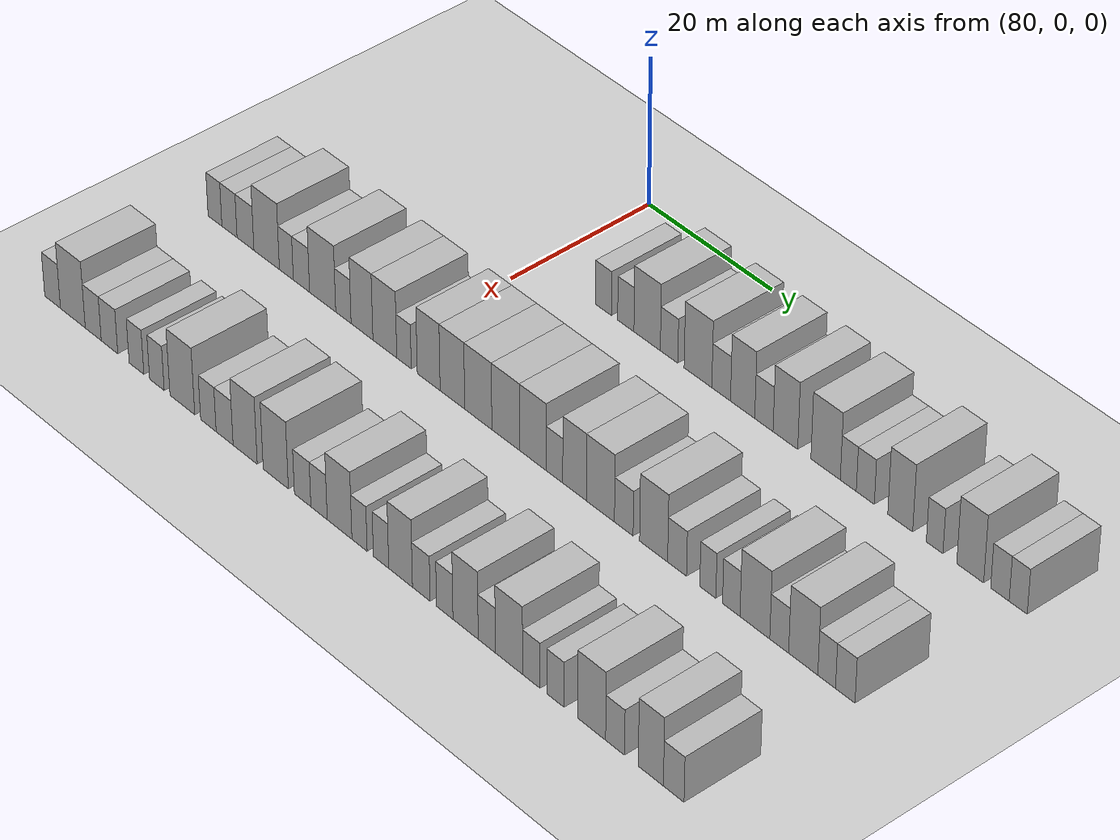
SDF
<sdf version="1.6">
 <world name="default">
  <include>
   <name>ground_plane_2</name>
   <uri>model://HANNAS_ground_plane</uri>
   <pose>100 0 0  0 0 0</pose>
  </include>
  <model name="building_646">
   <static>1</static>
   <pose>91.0000 10.6220 0 0.000000 0.000000 0.000000</pose>
   <link name="link">
    <pose>0 0 3.00 0 0 0</pose>
    <collision name="collision"><geometry><box><size>10.0000 2.6273 6.0000</size></box></geometry></collision>
    <visual name="visual">
     <cast_shadows>0</cast_shadows>
     <geometry><box><size>10.0000 2.6273 6.0000</size></box></geometry>
     <material>
      <script>
       <uri>model://HANNAS_wall/materials/scripts</uri>
       <uri>model://HANNAS_wall/materials/textures</uri>
       <name>vrc/HANNAS_wall</name>
      </script>
     </material>
    </visual>
   </link>
  </model>
  <model name="building_647">
   <static>1</static>
   <pose>91.0000 14.2509 0 0.000000 0.000000 0.000000</pose>
   <link name="link">
    <pose>0 0 3.00 0 0 0</pose>
    <collision name="collision"><geometry><box><size>10.0000 2.6305 6.0000</size></box></geometry></collision>
    <visual name="visual">
     <cast_shadows>0</cast_shadows>
     <geometry><box><size>10.0000 2.6305 6.0000</size></box></geometry>
     <material>
      <script>
       <uri>model://HANNAS_wall/materials/scripts</uri>
       <uri>model://HANNAS_wall/materials/textures</uri>
       <name>vrc/HANNAS_wall</name>
      </script>
     </material>
    </visual>
   </link>
  </model>
  <model name="building_648">
   <static>1</static>
   <pose>91.0000 17.6881 0 0.000000 0.000000 0.000000</pose>
   <link name="link">
    <pose>0 0 4.50 0 0 0</pose>
    <collision name="collision"><geometry><box><size>10.0000 4.2439 9.0000</size></box></geometry></collision>
    <visual name="visual">
     <cast_shadows>0</cast_shadows>
     <geometry><box><size>10.0000 4.2439 9.0000</size></box></geometry>
     <material>
      <script>
       <uri>model://HANNAS_wall/materials/scripts</uri>
       <uri>model://HANNAS_wall/materials/textures</uri>
       <name>vrc/HANNAS_wall</name>
      </script>
     </material>
    </visual>
   </link>
  </model>
  <model name="building_649">
   <static>1</static>
   <pose>91.0000 21.2003 0 0.000000 0.000000 0.000000</pose>
   <link name="link">
    <pose>0 0 3.00 0 0 0</pose>
    <collision name="collision"><geometry><box><size>10.0000 2.7805 6.0000</size></box></geometry></collision>
    <visual name="visual">
     <cast_shadows>0</cast_shadows>
     <geometry><box><size>10.0000 2.7805 6.0000</size></box></geometry>
     <material>
      <script>
       <uri>model://HANNAS_wall/materials/scripts</uri>
       <uri>model://HANNAS_wall/materials/textures</uri>
       <name>vrc/HANNAS_wall</name>
      </script>
     </material>
    </visual>
   </link>
  </model>
  <model name="building_650">
   <static>1</static>
   <pose>91.0000 25.7747 0 0.000000 0.000000 0.000000</pose>
   <link name="link">
    <pose>0 0 4.50 0 0 0</pose>
    <collision name="collision"><geometry><box><size>10.0000 4.3682 9.0000</size></box></geometry></collision>
    <visual name="visual">
     <cast_shadows>0</cast_shadows>
     <geometry><box><size>10.0000 4.3682 9.0000</size></box></geometry>
     <material>
      <script>
       <uri>model://HANNAS_wall/materials/scripts</uri>
       <uri>model://HANNAS_wall/materials/textures</uri>
       <name>vrc/HANNAS_wall</name>
      </script>
     </material>
    </visual>
   </link>
  </model>
  <model name="building_651">
   <static>1</static>
   <pose>91.0000 29.4192 0 0.000000 0.000000 0.000000</pose>
   <link name="link">
    <pose>0 0 3.00 0 0 0</pose>
    <collision name="collision"><geometry><box><size>10.0000 2.9207 6.0000</size></box></geometry></collision>
    <visual name="visual">
     <cast_shadows>0</cast_shadows>
     <geometry><box><size>10.0000 2.9207 6.0000</size></box></geometry>
     <material>
      <script>
       <uri>model://HANNAS_wall/materials/scripts</uri>
       <uri>model://HANNAS_wall/materials/textures</uri>
       <name>vrc/HANNAS_wall</name>
      </script>
     </material>
    </visual>
   </link>
  </model>
  <model name="building_652">
   <static>1</static>
   <pose>91.0000 32.7664 0 0.000000 0.000000 0.000000</pose>
   <link name="link">
    <pose>0 0 4.50 0 0 0</pose>
    <collision name="collision"><geometry><box><size>10.0000 3.7739 9.0000</size></box></geometry></collision>
    <visual name="visual">
     <cast_shadows>0</cast_shadows>
     <geometry><box><size>10.0000 3.7739 9.0000</size></box></geometry>
     <material>
      <script>
       <uri>model://HANNAS_wall/materials/scripts</uri>
       <uri>model://HANNAS_wall/materials/textures</uri>
       <name>vrc/HANNAS_wall</name>
      </script>
     </material>
    </visual>
   </link>
  </model>
  <model name="building_653">
   <static>1</static>
   <pose>91.0000 36.0673 0 0.000000 0.000000 0.000000</pose>
   <link name="link">
    <pose>0 0 3.00 0 0 0</pose>
    <collision name="collision"><geometry><box><size>10.0000 2.8278 6.0000</size></box></geometry></collision>
    <visual name="visual">
     <cast_shadows>0</cast_shadows>
     <geometry><box><size>10.0000 2.8278 6.0000</size></box></geometry>
     <material>
      <script>
       <uri>model://HANNAS_wall/materials/scripts</uri>
       <uri>model://HANNAS_wall/materials/textures</uri>
       <name>vrc/HANNAS_wall</name>
      </script>
     </material>
    </visual>
   </link>
  </model>
  <model name="building_654">
   <static>1</static>
   <pose>91.0000 39.3724 0 0.000000 0.000000 0.000000</pose>
   <link name="link">
    <pose>0 0 4.50 0 0 0</pose>
    <collision name="collision"><geometry><box><size>10.0000 3.7824 9.0000</size></box></geometry></collision>
    <visual name="visual">
     <cast_shadows>0</cast_shadows>
     <geometry><box><size>10.0000 3.7824 9.0000</size></box></geometry>
     <material>
      <script>
       <uri>model://HANNAS_wall/materials/scripts</uri>
       <uri>model://HANNAS_wall/materials/textures</uri>
       <name>vrc/HANNAS_wall</name>
      </script>
     </material>
    </visual>
   </link>
  </model>
  <model name="building_655">
   <static>1</static>
   <pose>91.0000 45.4849 0 0.000000 0.000000 0.000000</pose>
   <link name="link">
    <pose>0 0 4.50 0 0 0</pose>
    <collision name="collision"><geometry><box><size>10.0000 4.4428 9.0000</size></box></geometry></collision>
    <visual name="visual">
     <cast_shadows>0</cast_shadows>
     <geometry><box><size>10.0000 4.4428 9.0000</size></box></geometry>
     <material>
      <script>
       <uri>model://HANNAS_wall/materials/scripts</uri>
       <uri>model://HANNAS_wall/materials/textures</uri>
       <name>vrc/HANNAS_wall</name>
      </script>
     </material>
    </visual>
   </link>
  </model>
  <model name="building_656">
   <static>1</static>
   <pose>91.0000 48.9068 0 0.000000 0.000000 0.000000</pose>
   <link name="link">
    <pose>0 0 3.00 0 0 0</pose>
    <collision name="collision"><geometry><box><size>10.0000 2.4010 6.0000</size></box></geometry></collision>
    <visual name="visual">
     <cast_shadows>0</cast_shadows>
     <geometry><box><size>10.0000 2.4010 6.0000</size></box></geometry>
     <material>
      <script>
       <uri>model://HANNAS_wall/materials/scripts</uri>
       <uri>model://HANNAS_wall/materials/textures</uri>
       <name>vrc/HANNAS_wall</name>
      </script>
     </material>
    </visual>
   </link>
  </model>
  <model name="building_657">
   <static>1</static>
   <pose>91.0000 51.4537 0 0.000000 0.000000 0.000000</pose>
   <link name="link">
    <pose>0 0 3.00 0 0 0</pose>
    <collision name="collision"><geometry><box><size>10.0000 2.6928 6.0000</size></box></geometry></collision>
    <visual name="visual">
     <cast_shadows>0</cast_shadows>
     <geometry><box><size>10.0000 2.6928 6.0000</size></box></geometry>
     <material>
      <script>
       <uri>model://HANNAS_wall/materials/scripts</uri>
       <uri>model://HANNAS_wall/materials/textures</uri>
       <name>vrc/HANNAS_wall</name>
      </script>
     </material>
    </visual>
   </link>
  </model>
  <model name="building_658">
   <static>1</static>
   <pose>91.0000 56.6360 0 0.000000 0.000000 0.000000</pose>
   <link name="link">
    <pose>0 0 4.50 0 0 0</pose>
    <collision name="collision"><geometry><box><size>10.0000 3.6719 9.0000</size></box></geometry></collision>
    <visual name="visual">
     <cast_shadows>0</cast_shadows>
     <geometry><box><size>10.0000 3.6719 9.0000</size></box></geometry>
     <material>
      <script>
       <uri>model://HANNAS_wall/materials/scripts</uri>
       <uri>model://HANNAS_wall/materials/textures</uri>
       <name>vrc/HANNAS_wall</name>
      </script>
     </material>
    </visual>
   </link>
  </model>
  <model name="building_659">
   <static>1</static>
   <pose>91.0000 61.6836 0 0.000000 0.000000 0.000000</pose>
   <link name="link">
    <pose>0 0 3.00 0 0 0</pose>
    <collision name="collision"><geometry><box><size>10.0000 2.4233 6.0000</size></box></geometry></collision>
    <visual name="visual">
     <cast_shadows>0</cast_shadows>
     <geometry><box><size>10.0000 2.4233 6.0000</size></box></geometry>
     <material>
      <script>
       <uri>model://HANNAS_wall/materials/scripts</uri>
       <uri>model://HANNAS_wall/materials/textures</uri>
       <name>vrc/HANNAS_wall</name>
      </script>
     </material>
    </visual>
   </link>
  </model>
  <model name="building_660">
   <static>1</static>
   <pose>91.0000 66.8357 0 0.000000 0.000000 0.000000</pose>
   <link name="link">
    <pose>0 0 4.50 0 0 0</pose>
    <collision name="collision"><geometry><box><size>10.0000 3.8809 9.0000</size></box></geometry></collision>
    <visual name="visual">
     <cast_shadows>0</cast_shadows>
     <geometry><box><size>10.0000 3.8809 9.0000</size></box></geometry>
     <material>
      <script>
       <uri>model://HANNAS_wall/materials/scripts</uri>
       <uri>model://HANNAS_wall/materials/textures</uri>
       <name>vrc/HANNAS_wall</name>
      </script>
     </material>
    </visual>
   </link>
  </model>
  <model name="building_661">
   <static>1</static>
   <pose>91.0000 71.0973 0 0.000000 0.000000 0.000000</pose>
   <link name="link">
    <pose>0 0 3.00 0 0 0</pose>
    <collision name="collision"><geometry><box><size>10.0000 2.6424 6.0000</size></box></geometry></collision>
    <visual name="visual">
     <cast_shadows>0</cast_shadows>
     <geometry><box><size>10.0000 2.6424 6.0000</size></box></geometry>
     <material>
      <script>
       <uri>model://HANNAS_wall/materials/scripts</uri>
       <uri>model://HANNAS_wall/materials/textures</uri>
       <name>vrc/HANNAS_wall</name>
      </script>
     </material>
    </visual>
   </link>
  </model>
  <model name="building_662">
   <static>1</static>
   <pose>91.0000 73.7024 0 0.000000 0.000000 0.000000</pose>
   <link name="link">
    <pose>0 0 3.00 0 0 0</pose>
    <collision name="collision"><geometry><box><size>10.0000 2.5678 6.0000</size></box></geometry></collision>
    <visual name="visual">
     <cast_shadows>0</cast_shadows>
     <geometry><box><size>10.0000 2.5678 6.0000</size></box></geometry>
     <material>
      <script>
       <uri>model://HANNAS_wall/materials/scripts</uri>
       <uri>model://HANNAS_wall/materials/textures</uri>
       <name>vrc/HANNAS_wall</name>
      </script>
     </material>
    </visual>
   </link>
  </model>
  <model name="building_825">
   <static>1</static>
   <pose>113.0000 -28.9686 0 0.000000 0.000000 0.000000</pose>
   <link name="link">
    <pose>0 0 3.00 0 0 0</pose>
    <collision name="collision"><geometry><box><size>10.0000 2.4598 6.0000</size></box></geometry></collision>
    <visual name="visual">
     <cast_shadows>0</cast_shadows>
     <geometry><box><size>10.0000 2.4598 6.0000</size></box></geometry>
     <material>
      <script>
       <uri>model://HANNAS_wall/materials/scripts</uri>
       <uri>model://HANNAS_wall/materials/textures</uri>
       <name>vrc/HANNAS_wall</name>
      </script>
     </material>
    </visual>
   </link>
  </model>
  <model name="building_826">
   <static>1</static>
   <pose>113.0000 -26.3942 0 0.000000 0.000000 0.000000</pose>
   <link name="link">
    <pose>0 0 3.00 0 0 0</pose>
    <collision name="collision"><geometry><box><size>10.0000 2.6891 6.0000</size></box></geometry></collision>
    <visual name="visual">
     <cast_shadows>0</cast_shadows>
     <geometry><box><size>10.0000 2.6891 6.0000</size></box></geometry>
     <material>
      <script>
       <uri>model://HANNAS_wall/materials/scripts</uri>
       <uri>model://HANNAS_wall/materials/textures</uri>
       <name>vrc/HANNAS_wall</name>
      </script>
     </material>
    </visual>
   </link>
  </model>
  <model name="building_827">
   <static>1</static>
   <pose>113.0000 -23.5599 0 0.000000 0.000000 0.000000</pose>
   <link name="link">
    <pose>0 0 3.00 0 0 0</pose>
    <collision name="collision"><geometry><box><size>10.0000 2.9796 6.0000</size></box></geometry></collision>
    <visual name="visual">
     <cast_shadows>0</cast_shadows>
     <geometry><box><size>10.0000 2.9796 6.0000</size></box></geometry>
     <material>
      <script>
       <uri>model://HANNAS_wall/materials/scripts</uri>
       <uri>model://HANNAS_wall/materials/textures</uri>
       <name>vrc/HANNAS_wall</name>
      </script>
     </material>
    </visual>
   </link>
  </model>
  <model name="building_828">
   <static>1</static>
   <pose>113.0000 -19.8398 0 0.000000 0.000000 0.000000</pose>
   <link name="link">
    <pose>0 0 4.50 0 0 0</pose>
    <collision name="collision"><geometry><box><size>10.0000 4.4605 9.0000</size></box></geometry></collision>
    <visual name="visual">
     <cast_shadows>0</cast_shadows>
     <geometry><box><size>10.0000 4.4605 9.0000</size></box></geometry>
     <material>
      <script>
       <uri>model://HANNAS_wall/materials/scripts</uri>
       <uri>model://HANNAS_wall/materials/textures</uri>
       <name>vrc/HANNAS_wall</name>
      </script>
     </material>
    </visual>
   </link>
  </model>
  <model name="building_829">
   <static>1</static>
   <pose>113.0000 -16.3971 0 0.000000 0.000000 0.000000</pose>
   <link name="link">
    <pose>0 0 3.00 0 0 0</pose>
    <collision name="collision"><geometry><box><size>10.0000 2.4251 6.0000</size></box></geometry></collision>
    <visual name="visual">
     <cast_shadows>0</cast_shadows>
     <geometry><box><size>10.0000 2.4251 6.0000</size></box></geometry>
     <material>
      <script>
       <uri>model://HANNAS_wall/materials/scripts</uri>
       <uri>model://HANNAS_wall/materials/textures</uri>
       <name>vrc/HANNAS_wall</name>
      </script>
     </material>
    </visual>
   </link>
  </model>
  <model name="building_830">
   <static>1</static>
   <pose>113.0000 -13.7801 0 0.000000 0.000000 0.000000</pose>
   <link name="link">
    <pose>0 0 3.00 0 0 0</pose>
    <collision name="collision"><geometry><box><size>10.0000 2.8089 6.0000</size></box></geometry></collision>
    <visual name="visual">
     <cast_shadows>0</cast_shadows>
     <geometry><box><size>10.0000 2.8089 6.0000</size></box></geometry>
     <material>
      <script>
       <uri>model://HANNAS_wall/materials/scripts</uri>
       <uri>model://HANNAS_wall/materials/textures</uri>
       <name>vrc/HANNAS_wall</name>
      </script>
     </material>
    </visual>
   </link>
  </model>
  <model name="building_831">
   <static>1</static>
   <pose>113.0000 -10.1330 0 0.000000 0.000000 0.000000</pose>
   <link name="link">
    <pose>0 0 4.50 0 0 0</pose>
    <collision name="collision"><geometry><box><size>10.0000 4.4853 9.0000</size></box></geometry></collision>
    <visual name="visual">
     <cast_shadows>0</cast_shadows>
     <geometry><box><size>10.0000 4.4853 9.0000</size></box></geometry>
     <material>
      <script>
       <uri>model://HANNAS_wall/materials/scripts</uri>
       <uri>model://HANNAS_wall/materials/textures</uri>
       <name>vrc/HANNAS_wall</name>
      </script>
     </material>
    </visual>
   </link>
  </model>
  <model name="building_832">
   <static>1</static>
   <pose>113.0000 -6.5827 0 0.000000 0.000000 0.000000</pose>
   <link name="link">
    <pose>0 0 3.00 0 0 0</pose>
    <collision name="collision"><geometry><box><size>10.0000 2.6152 6.0000</size></box></geometry></collision>
    <visual name="visual">
     <cast_shadows>0</cast_shadows>
     <geometry><box><size>10.0000 2.6152 6.0000</size></box></geometry>
     <material>
      <script>
       <uri>model://HANNAS_wall/materials/scripts</uri>
       <uri>model://HANNAS_wall/materials/textures</uri>
       <name>vrc/HANNAS_wall</name>
      </script>
     </material>
    </visual>
   </link>
  </model>
  <model name="building_833">
   <static>1</static>
   <pose>113.0000 -3.4272 0 0.000000 0.000000 0.000000</pose>
   <link name="link">
    <pose>0 0 4.50 0 0 0</pose>
    <collision name="collision"><geometry><box><size>10.0000 3.6958 9.0000</size></box></geometry></collision>
    <visual name="visual">
     <cast_shadows>0</cast_shadows>
     <geometry><box><size>10.0000 3.6958 9.0000</size></box></geometry>
     <material>
      <script>
       <uri>model://HANNAS_wall/materials/scripts</uri>
       <uri>model://HANNAS_wall/materials/textures</uri>
       <name>vrc/HANNAS_wall</name>
      </script>
     </material>
    </visual>
   </link>
  </model>
  <model name="building_834">
   <static>1</static>
   <pose>113.0000 0.4233 0 0.000000 0.000000 0.000000</pose>
   <link name="link">
    <pose>0 0 4.50 0 0 0</pose>
    <collision name="collision"><geometry><box><size>10.0000 4.0052 9.0000</size></box></geometry></collision>
    <visual name="visual">
     <cast_shadows>0</cast_shadows>
     <geometry><box><size>10.0000 4.0052 9.0000</size></box></geometry>
     <material>
      <script>
       <uri>model://HANNAS_wall/materials/scripts</uri>
       <uri>model://HANNAS_wall/materials/textures</uri>
       <name>vrc/HANNAS_wall</name>
      </script>
     </material>
    </visual>
   </link>
  </model>
  <model name="building_835">
   <static>1</static>
   <pose>113.0000 3.6281 0 0.000000 0.000000 0.000000</pose>
   <link name="link">
    <pose>0 0 3.00 0 0 0</pose>
    <collision name="collision"><geometry><box><size>10.0000 2.4045 6.0000</size></box></geometry></collision>
    <visual name="visual">
     <cast_shadows>0</cast_shadows>
     <geometry><box><size>10.0000 2.4045 6.0000</size></box></geometry>
     <material>
      <script>
       <uri>model://HANNAS_wall/materials/scripts</uri>
       <uri>model://HANNAS_wall/materials/textures</uri>
       <name>vrc/HANNAS_wall</name>
      </script>
     </material>
    </visual>
   </link>
  </model>
  <model name="building_836">
   <static>1</static>
   <pose>113.0000 7.7181 0 0.000000 0.000000 0.000000</pose>
   <link name="link">
    <pose>0 0 4.50 0 0 0</pose>
    <collision name="collision"><geometry><box><size>10.0000 3.7754 9.0000</size></box></geometry></collision>
    <visual name="visual">
     <cast_shadows>0</cast_shadows>
     <geometry><box><size>10.0000 3.7754 9.0000</size></box></geometry>
     <material>
      <script>
       <uri>model://HANNAS_wall/materials/scripts</uri>
       <uri>model://HANNAS_wall/materials/textures</uri>
       <name>vrc/HANNAS_wall</name>
      </script>
     </material>
    </visual>
   </link>
  </model>
  <model name="building_837">
   <static>1</static>
   <pose>113.0000 11.6192 0 0.000000 0.000000 0.000000</pose>
   <link name="link">
    <pose>0 0 4.50 0 0 0</pose>
    <collision name="collision"><geometry><box><size>10.0000 4.0267 9.0000</size></box></geometry></collision>
    <visual name="visual">
     <cast_shadows>0</cast_shadows>
     <geometry><box><size>10.0000 4.0267 9.0000</size></box></geometry>
     <material>
      <script>
       <uri>model://HANNAS_wall/materials/scripts</uri>
       <uri>model://HANNAS_wall/materials/textures</uri>
       <name>vrc/HANNAS_wall</name>
      </script>
     </material>
    </visual>
   </link>
  </model>
  <model name="building_838">
   <static>1</static>
   <pose>113.0000 15.8356 0 0.000000 0.000000 0.000000</pose>
   <link name="link">
    <pose>0 0 4.50 0 0 0</pose>
    <collision name="collision"><geometry><box><size>10.0000 4.4061 9.0000</size></box></geometry></collision>
    <visual name="visual">
     <cast_shadows>0</cast_shadows>
     <geometry><box><size>10.0000 4.4061 9.0000</size></box></geometry>
     <material>
      <script>
       <uri>model://HANNAS_wall/materials/scripts</uri>
       <uri>model://HANNAS_wall/materials/textures</uri>
       <name>vrc/HANNAS_wall</name>
      </script>
     </material>
    </visual>
   </link>
  </model>
  <model name="building_839">
   <static>1</static>
   <pose>113.0000 20.2618 0 0.000000 0.000000 0.000000</pose>
   <link name="link">
    <pose>0 0 4.50 0 0 0</pose>
    <collision name="collision"><geometry><box><size>10.0000 4.4464 9.0000</size></box></geometry></collision>
    <visual name="visual">
     <cast_shadows>0</cast_shadows>
     <geometry><box><size>10.0000 4.4464 9.0000</size></box></geometry>
     <material>
      <script>
       <uri>model://HANNAS_wall/materials/scripts</uri>
       <uri>model://HANNAS_wall/materials/textures</uri>
       <name>vrc/HANNAS_wall</name>
      </script>
     </material>
    </visual>
   </link>
  </model>
  <model name="building_840">
   <static>1</static>
   <pose>113.0000 24.6090 0 0.000000 0.000000 0.000000</pose>
   <link name="link">
    <pose>0 0 4.50 0 0 0</pose>
    <collision name="collision"><geometry><box><size>10.0000 4.2481 9.0000</size></box></geometry></collision>
    <visual name="visual">
     <cast_shadows>0</cast_shadows>
     <geometry><box><size>10.0000 4.2481 9.0000</size></box></geometry>
     <material>
      <script>
       <uri>model://HANNAS_wall/materials/scripts</uri>
       <uri>model://HANNAS_wall/materials/textures</uri>
       <name>vrc/HANNAS_wall</name>
      </script>
     </material>
    </visual>
   </link>
  </model>
  <model name="building_841">
   <static>1</static>
   <pose>113.0000 28.0402 0 0.000000 0.000000 0.000000</pose>
   <link name="link">
    <pose>0 0 3.00 0 0 0</pose>
    <collision name="collision"><geometry><box><size>10.0000 2.6142 6.0000</size></box></geometry></collision>
    <visual name="visual">
     <cast_shadows>0</cast_shadows>
     <geometry><box><size>10.0000 2.6142 6.0000</size></box></geometry>
     <material>
      <script>
       <uri>model://HANNAS_wall/materials/scripts</uri>
       <uri>model://HANNAS_wall/materials/textures</uri>
       <name>vrc/HANNAS_wall</name>
      </script>
     </material>
    </visual>
   </link>
  </model>
  <model name="building_842">
   <static>1</static>
   <pose>113.0000 31.1927 0 0.000000 0.000000 0.000000</pose>
   <link name="link">
    <pose>0 0 4.50 0 0 0</pose>
    <collision name="collision"><geometry><box><size>10.0000 3.6908 9.0000</size></box></geometry></collision>
    <visual name="visual">
     <cast_shadows>0</cast_shadows>
     <geometry><box><size>10.0000 3.6908 9.0000</size></box></geometry>
     <material>
      <script>
       <uri>model://HANNAS_wall/materials/scripts</uri>
       <uri>model://HANNAS_wall/materials/textures</uri>
       <name>vrc/HANNAS_wall</name>
      </script>
     </material>
    </visual>
   </link>
  </model>
  <model name="building_843">
   <static>1</static>
   <pose>113.0000 35.2261 0 0.000000 0.000000 0.000000</pose>
   <link name="link">
    <pose>0 0 4.50 0 0 0</pose>
    <collision name="collision"><geometry><box><size>10.0000 4.3759 9.0000</size></box></geometry></collision>
    <visual name="visual">
     <cast_shadows>0</cast_shadows>
     <geometry><box><size>10.0000 4.3759 9.0000</size></box></geometry>
     <material>
      <script>
       <uri>model://HANNAS_wall/materials/scripts</uri>
       <uri>model://HANNAS_wall/materials/textures</uri>
       <name>vrc/HANNAS_wall</name>
      </script>
     </material>
    </visual>
   </link>
  </model>
  <model name="building_844">
   <static>1</static>
   <pose>113.0000 38.8515 0 0.000000 0.000000 0.000000</pose>
   <link name="link">
    <pose>0 0 3.00 0 0 0</pose>
    <collision name="collision"><geometry><box><size>10.0000 2.8749 6.0000</size></box></geometry></collision>
    <visual name="visual">
     <cast_shadows>0</cast_shadows>
     <geometry><box><size>10.0000 2.8749 6.0000</size></box></geometry>
     <material>
      <script>
       <uri>model://HANNAS_wall/materials/scripts</uri>
       <uri>model://HANNAS_wall/materials/textures</uri>
       <name>vrc/HANNAS_wall</name>
      </script>
     </material>
    </visual>
   </link>
  </model>
  <model name="building_845">
   <static>1</static>
   <pose>113.0000 43.4281 0 0.000000 0.000000 0.000000</pose>
   <link name="link">
    <pose>0 0 4.50 0 0 0</pose>
    <collision name="collision"><geometry><box><size>10.0000 4.2783 9.0000</size></box></geometry></collision>
    <visual name="visual">
     <cast_shadows>0</cast_shadows>
     <geometry><box><size>10.0000 4.2783 9.0000</size></box></geometry>
     <material>
      <script>
       <uri>model://HANNAS_wall/materials/scripts</uri>
       <uri>model://HANNAS_wall/materials/textures</uri>
       <name>vrc/HANNAS_wall</name>
      </script>
     </material>
    </visual>
   </link>
  </model>
  <model name="building_846">
   <static>1</static>
   <pose>113.0000 46.9993 0 0.000000 0.000000 0.000000</pose>
   <link name="link">
    <pose>0 0 3.00 0 0 0</pose>
    <collision name="collision"><geometry><box><size>10.0000 2.8642 6.0000</size></box></geometry></collision>
    <visual name="visual">
     <cast_shadows>0</cast_shadows>
     <geometry><box><size>10.0000 2.8642 6.0000</size></box></geometry>
     <material>
      <script>
       <uri>model://HANNAS_wall/materials/scripts</uri>
       <uri>model://HANNAS_wall/materials/textures</uri>
       <name>vrc/HANNAS_wall</name>
      </script>
     </material>
    </visual>
   </link>
  </model>
  <model name="building_847">
   <static>1</static>
   <pose>113.0000 51.6328 0 0.000000 0.000000 0.000000</pose>
   <link name="link">
    <pose>0 0 3.00 0 0 0</pose>
    <collision name="collision"><geometry><box><size>10.0000 2.4029 6.0000</size></box></geometry></collision>
    <visual name="visual">
     <cast_shadows>0</cast_shadows>
     <geometry><box><size>10.0000 2.4029 6.0000</size></box></geometry>
     <material>
      <script>
       <uri>model://HANNAS_wall/materials/scripts</uri>
       <uri>model://HANNAS_wall/materials/textures</uri>
       <name>vrc/HANNAS_wall</name>
      </script>
     </material>
    </visual>
   </link>
  </model>
  <model name="building_848">
   <static>1</static>
   <pose>113.0000 55.1320 0 0.000000 0.000000 0.000000</pose>
   <link name="link">
    <pose>0 0 3.00 0 0 0</pose>
    <collision name="collision"><geometry><box><size>10.0000 2.5955 6.0000</size></box></geometry></collision>
    <visual name="visual">
     <cast_shadows>0</cast_shadows>
     <geometry><box><size>10.0000 2.5955 6.0000</size></box></geometry>
     <material>
      <script>
       <uri>model://HANNAS_wall/materials/scripts</uri>
       <uri>model://HANNAS_wall/materials/textures</uri>
       <name>vrc/HANNAS_wall</name>
      </script>
     </material>
    </visual>
   </link>
  </model>
  <model name="building_849">
   <static>1</static>
   <pose>113.0000 58.6277 0 0.000000 0.000000 0.000000</pose>
   <link name="link">
    <pose>0 0 4.50 0 0 0</pose>
    <collision name="collision"><geometry><box><size>10.0000 4.3958 9.0000</size></box></geometry></collision>
    <visual name="visual">
     <cast_shadows>0</cast_shadows>
     <geometry><box><size>10.0000 4.3958 9.0000</size></box></geometry>
     <material>
      <script>
       <uri>model://HANNAS_wall/materials/scripts</uri>
       <uri>model://HANNAS_wall/materials/textures</uri>
       <name>vrc/HANNAS_wall</name>
      </script>
     </material>
    </visual>
   </link>
  </model>
  <model name="building_850">
   <static>1</static>
   <pose>113.0000 62.2053 0 0.000000 0.000000 0.000000</pose>
   <link name="link">
    <pose>0 0 3.00 0 0 0</pose>
    <collision name="collision"><geometry><box><size>10.0000 2.7595 6.0000</size></box></geometry></collision>
    <visual name="visual">
     <cast_shadows>0</cast_shadows>
     <geometry><box><size>10.0000 2.7595 6.0000</size></box></geometry>
     <material>
      <script>
       <uri>model://HANNAS_wall/materials/scripts</uri>
       <uri>model://HANNAS_wall/materials/textures</uri>
       <name>vrc/HANNAS_wall</name>
      </script>
     </material>
    </visual>
   </link>
  </model>
  <model name="building_851">
   <static>1</static>
   <pose>113.0000 65.7051 0 0.000000 0.000000 0.000000</pose>
   <link name="link">
    <pose>0 0 4.50 0 0 0</pose>
    <collision name="collision"><geometry><box><size>10.0000 4.2400 9.0000</size></box></geometry></collision>
    <visual name="visual">
     <cast_shadows>0</cast_shadows>
     <geometry><box><size>10.0000 4.2400 9.0000</size></box></geometry>
     <material>
      <script>
       <uri>model://HANNAS_wall/materials/scripts</uri>
       <uri>model://HANNAS_wall/materials/textures</uri>
       <name>vrc/HANNAS_wall</name>
      </script>
     </material>
    </visual>
   </link>
  </model>
  <model name="building_852">
   <static>1</static>
   <pose>113.0000 69.1000 0 0.000000 0.000000 0.000000</pose>
   <link name="link">
    <pose>0 0 3.00 0 0 0</pose>
    <collision name="collision"><geometry><box><size>10.0000 2.5498 6.0000</size></box></geometry></collision>
    <visual name="visual">
     <cast_shadows>0</cast_shadows>
     <geometry><box><size>10.0000 2.5498 6.0000</size></box></geometry>
     <material>
      <script>
       <uri>model://HANNAS_wall/materials/scripts</uri>
       <uri>model://HANNAS_wall/materials/textures</uri>
       <name>vrc/HANNAS_wall</name>
      </script>
     </material>
    </visual>
   </link>
  </model>
  <model name="building_853">
   <static>1</static>
   <pose>113.0000 71.7738 0 0.000000 0.000000 0.000000</pose>
   <link name="link">
    <pose>0 0 3.00 0 0 0</pose>
    <collision name="collision"><geometry><box><size>10.0000 2.7978 6.0000</size></box></geometry></collision>
    <visual name="visual">
     <cast_shadows>0</cast_shadows>
     <geometry><box><size>10.0000 2.7978 6.0000</size></box></geometry>
     <material>
      <script>
       <uri>model://HANNAS_wall/materials/scripts</uri>
       <uri>model://HANNAS_wall/materials/textures</uri>
       <name>vrc/HANNAS_wall</name>
      </script>
     </material>
    </visual>
   </link>
  </model>
  <model name="building_1013">
   <static>1</static>
   <pose>135.0000 -29.1302 0 0.000000 0.000000 0.000000</pose>
   <link name="link">
    <pose>0 0 3.00 0 0 0</pose>
    <collision name="collision"><geometry><box><size>10.0000 2.8239 6.0000</size></box></geometry></collision>
    <visual name="visual">
     <cast_shadows>0</cast_shadows>
     <geometry><box><size>10.0000 2.8239 6.0000</size></box></geometry>
     <material>
      <script>
       <uri>model://HANNAS_wall/materials/scripts</uri>
       <uri>model://HANNAS_wall/materials/textures</uri>
       <name>vrc/HANNAS_wall</name>
      </script>
     </material>
    </visual>
   </link>
  </model>
  <model name="building_1014">
   <static>1</static>
   <pose>135.0000 -25.4980 0 0.000000 0.000000 0.000000</pose>
   <link name="link">
    <pose>0 0 4.50 0 0 0</pose>
    <collision name="collision"><geometry><box><size>10.0000 4.4405 9.0000</size></box></geometry></collision>
    <visual name="visual">
     <cast_shadows>0</cast_shadows>
     <geometry><box><size>10.0000 4.4405 9.0000</size></box></geometry>
     <material>
      <script>
       <uri>model://HANNAS_wall/materials/scripts</uri>
       <uri>model://HANNAS_wall/materials/textures</uri>
       <name>vrc/HANNAS_wall</name>
      </script>
     </material>
    </visual>
   </link>
  </model>
  <model name="building_1015">
   <static>1</static>
   <pose>135.0000 -21.8581 0 0.000000 0.000000 0.000000</pose>
   <link name="link">
    <pose>0 0 3.00 0 0 0</pose>
    <collision name="collision"><geometry><box><size>10.0000 2.8393 6.0000</size></box></geometry></collision>
    <visual name="visual">
     <cast_shadows>0</cast_shadows>
     <geometry><box><size>10.0000 2.8393 6.0000</size></box></geometry>
     <material>
      <script>
       <uri>model://HANNAS_wall/materials/scripts</uri>
       <uri>model://HANNAS_wall/materials/textures</uri>
       <name>vrc/HANNAS_wall</name>
      </script>
     </material>
    </visual>
   </link>
  </model>
  <model name="building_1016">
   <static>1</static>
   <pose>135.0000 -18.9832 0 0.000000 0.000000 0.000000</pose>
   <link name="link">
    <pose>0 0 3.00 0 0 0</pose>
    <collision name="collision"><geometry><box><size>10.0000 2.9104 6.0000</size></box></geometry></collision>
    <visual name="visual">
     <cast_shadows>0</cast_shadows>
     <geometry><box><size>10.0000 2.9104 6.0000</size></box></geometry>
     <material>
      <script>
       <uri>model://HANNAS_wall/materials/scripts</uri>
       <uri>model://HANNAS_wall/materials/textures</uri>
       <name>vrc/HANNAS_wall</name>
      </script>
     </material>
    </visual>
   </link>
  </model>
  <model name="building_1017">
   <static>1</static>
   <pose>135.0000 -14.2420 0 0.000000 0.000000 0.000000</pose>
   <link name="link">
    <pose>0 0 3.00 0 0 0</pose>
    <collision name="collision"><geometry><box><size>10.0000 2.5721 6.0000</size></box></geometry></collision>
    <visual name="visual">
     <cast_shadows>0</cast_shadows>
     <geometry><box><size>10.0000 2.5721 6.0000</size></box></geometry>
     <material>
      <script>
       <uri>model://HANNAS_wall/materials/scripts</uri>
       <uri>model://HANNAS_wall/materials/textures</uri>
       <name>vrc/HANNAS_wall</name>
      </script>
     </material>
    </visual>
   </link>
  </model>
  <model name="building_1018">
   <static>1</static>
   <pose>135.0000 -10.6902 0 0.000000 0.000000 0.000000</pose>
   <link name="link">
    <pose>0 0 3.00 0 0 0</pose>
    <collision name="collision"><geometry><box><size>10.0000 2.5315 6.0000</size></box></geometry></collision>
    <visual name="visual">
     <cast_shadows>0</cast_shadows>
     <geometry><box><size>10.0000 2.5315 6.0000</size></box></geometry>
     <material>
      <script>
       <uri>model://HANNAS_wall/materials/scripts</uri>
       <uri>model://HANNAS_wall/materials/textures</uri>
       <name>vrc/HANNAS_wall</name>
      </script>
     </material>
    </visual>
   </link>
  </model>
  <model name="building_1019">
   <static>1</static>
   <pose>135.0000 -6.2949 0 0.000000 0.000000 0.000000</pose>
   <link name="link">
    <pose>0 0 4.50 0 0 0</pose>
    <collision name="collision"><geometry><box><size>10.0000 4.2591 9.0000</size></box></geometry></collision>
    <visual name="visual">
     <cast_shadows>0</cast_shadows>
     <geometry><box><size>10.0000 4.2591 9.0000</size></box></geometry>
     <material>
      <script>
       <uri>model://HANNAS_wall/materials/scripts</uri>
       <uri>model://HANNAS_wall/materials/textures</uri>
       <name>vrc/HANNAS_wall</name>
      </script>
     </material>
    </visual>
   </link>
  </model>
  <model name="building_1020">
   <static>1</static>
   <pose>135.0000 -1.8457 0 0.000000 0.000000 0.000000</pose>
   <link name="link">
    <pose>0 0 3.00 0 0 0</pose>
    <collision name="collision"><geometry><box><size>10.0000 2.6394 6.0000</size></box></geometry></collision>
    <visual name="visual">
     <cast_shadows>0</cast_shadows>
     <geometry><box><size>10.0000 2.6394 6.0000</size></box></geometry>
     <material>
      <script>
       <uri>model://HANNAS_wall/materials/scripts</uri>
       <uri>model://HANNAS_wall/materials/textures</uri>
       <name>vrc/HANNAS_wall</name>
      </script>
     </material>
    </visual>
   </link>
  </model>
  <model name="building_1021">
   <static>1</static>
   <pose>135.0000 0.9059 0 0.000000 0.000000 0.000000</pose>
   <link name="link">
    <pose>0 0 3.00 0 0 0</pose>
    <collision name="collision"><geometry><box><size>10.0000 2.8638 6.0000</size></box></geometry></collision>
    <visual name="visual">
     <cast_shadows>0</cast_shadows>
     <geometry><box><size>10.0000 2.8638 6.0000</size></box></geometry>
     <material>
      <script>
       <uri>model://HANNAS_wall/materials/scripts</uri>
       <uri>model://HANNAS_wall/materials/textures</uri>
       <name>vrc/HANNAS_wall</name>
      </script>
     </material>
    </visual>
   </link>
  </model>
  <model name="building_1022">
   <static>1</static>
   <pose>135.0000 4.3651 0 0.000000 0.000000 0.000000</pose>
   <link name="link">
    <pose>0 0 4.50 0 0 0</pose>
    <collision name="collision"><geometry><box><size>10.0000 4.0546 9.0000</size></box></geometry></collision>
    <visual name="visual">
     <cast_shadows>0</cast_shadows>
     <geometry><box><size>10.0000 4.0546 9.0000</size></box></geometry>
     <material>
      <script>
       <uri>model://HANNAS_wall/materials/scripts</uri>
       <uri>model://HANNAS_wall/materials/textures</uri>
       <name>vrc/HANNAS_wall</name>
      </script>
     </material>
    </visual>
   </link>
  </model>
  <model name="building_1023">
   <static>1</static>
   <pose>135.0000 9.4765 0 0.000000 0.000000 0.000000</pose>
   <link name="link">
    <pose>0 0 4.50 0 0 0</pose>
    <collision name="collision"><geometry><box><size>10.0000 4.1681 9.0000</size></box></geometry></collision>
    <visual name="visual">
     <cast_shadows>0</cast_shadows>
     <geometry><box><size>10.0000 4.1681 9.0000</size></box></geometry>
     <material>
      <script>
       <uri>model://HANNAS_wall/materials/scripts</uri>
       <uri>model://HANNAS_wall/materials/textures</uri>
       <name>vrc/HANNAS_wall</name>
      </script>
     </material>
    </visual>
   </link>
  </model>
  <model name="building_1024">
   <static>1</static>
   <pose>135.0000 13.9155 0 0.000000 0.000000 0.000000</pose>
   <link name="link">
    <pose>0 0 3.00 0 0 0</pose>
    <collision name="collision"><geometry><box><size>10.0000 2.7099 6.0000</size></box></geometry></collision>
    <visual name="visual">
     <cast_shadows>0</cast_shadows>
     <geometry><box><size>10.0000 2.7099 6.0000</size></box></geometry>
     <material>
      <script>
       <uri>model://HANNAS_wall/materials/scripts</uri>
       <uri>model://HANNAS_wall/materials/textures</uri>
       <name>vrc/HANNAS_wall</name>
      </script>
     </material>
    </visual>
   </link>
  </model>
  <model name="building_1025">
   <static>1</static>
   <pose>135.0000 16.6057 0 0.000000 0.000000 0.000000</pose>
   <link name="link">
    <pose>0 0 3.00 0 0 0</pose>
    <collision name="collision"><geometry><box><size>10.0000 2.6704 6.0000</size></box></geometry></collision>
    <visual name="visual">
     <cast_shadows>0</cast_shadows>
     <geometry><box><size>10.0000 2.6704 6.0000</size></box></geometry>
     <material>
      <script>
       <uri>model://HANNAS_wall/materials/scripts</uri>
       <uri>model://HANNAS_wall/materials/textures</uri>
       <name>vrc/HANNAS_wall</name>
      </script>
     </material>
    </visual>
   </link>
  </model>
  <model name="building_1026">
   <static>1</static>
   <pose>135.0000 19.9419 0 0.000000 0.000000 0.000000</pose>
   <link name="link">
    <pose>0 0 4.50 0 0 0</pose>
    <collision name="collision"><geometry><box><size>10.0000 4.0021 9.0000</size></box></geometry></collision>
    <visual name="visual">
     <cast_shadows>0</cast_shadows>
     <geometry><box><size>10.0000 4.0021 9.0000</size></box></geometry>
     <material>
      <script>
       <uri>model://HANNAS_wall/materials/scripts</uri>
       <uri>model://HANNAS_wall/materials/textures</uri>
       <name>vrc/HANNAS_wall</name>
      </script>
     </material>
    </visual>
   </link>
  </model>
  <model name="building_1027">
   <static>1</static>
   <pose>135.0000 23.1700 0 0.000000 0.000000 0.000000</pose>
   <link name="link">
    <pose>0 0 3.00 0 0 0</pose>
    <collision name="collision"><geometry><box><size>10.0000 2.4540 6.0000</size></box></geometry></collision>
    <visual name="visual">
     <cast_shadows>0</cast_shadows>
     <geometry><box><size>10.0000 2.4540 6.0000</size></box></geometry>
     <material>
      <script>
       <uri>model://HANNAS_wall/materials/scripts</uri>
       <uri>model://HANNAS_wall/materials/textures</uri>
       <name>vrc/HANNAS_wall</name>
      </script>
     </material>
    </visual>
   </link>
  </model>
  <model name="building_1028">
   <static>1</static>
   <pose>135.0000 26.6234 0 0.000000 0.000000 0.000000</pose>
   <link name="link">
    <pose>0 0 3.00 0 0 0</pose>
    <collision name="collision"><geometry><box><size>10.0000 2.4530 6.0000</size></box></geometry></collision>
    <visual name="visual">
     <cast_shadows>0</cast_shadows>
     <geometry><box><size>10.0000 2.4530 6.0000</size></box></geometry>
     <material>
      <script>
       <uri>model://HANNAS_wall/materials/scripts</uri>
       <uri>model://HANNAS_wall/materials/textures</uri>
       <name>vrc/HANNAS_wall</name>
      </script>
     </material>
    </visual>
   </link>
  </model>
  <model name="building_1029">
   <static>1</static>
   <pose>135.0000 29.7317 0 0.000000 0.000000 0.000000</pose>
   <link name="link">
    <pose>0 0 4.50 0 0 0</pose>
    <collision name="collision"><geometry><box><size>10.0000 3.7635 9.0000</size></box></geometry></collision>
    <visual name="visual">
     <cast_shadows>0</cast_shadows>
     <geometry><box><size>10.0000 3.7635 9.0000</size></box></geometry>
     <material>
      <script>
       <uri>model://HANNAS_wall/materials/scripts</uri>
       <uri>model://HANNAS_wall/materials/textures</uri>
       <name>vrc/HANNAS_wall</name>
      </script>
     </material>
    </visual>
   </link>
  </model>
  <model name="building_1030">
   <static>1</static>
   <pose>135.0000 33.0039 0 0.000000 0.000000 0.000000</pose>
   <link name="link">
    <pose>0 0 3.00 0 0 0</pose>
    <collision name="collision"><geometry><box><size>10.0000 2.7811 6.0000</size></box></geometry></collision>
    <visual name="visual">
     <cast_shadows>0</cast_shadows>
     <geometry><box><size>10.0000 2.7811 6.0000</size></box></geometry>
     <material>
      <script>
       <uri>model://HANNAS_wall/materials/scripts</uri>
       <uri>model://HANNAS_wall/materials/textures</uri>
       <name>vrc/HANNAS_wall</name>
      </script>
     </material>
    </visual>
   </link>
  </model>
  <model name="building_1031">
   <static>1</static>
   <pose>135.0000 36.6786 0 0.000000 0.000000 0.000000</pose>
   <link name="link">
    <pose>0 0 3.00 0 0 0</pose>
    <collision name="collision"><geometry><box><size>10.0000 2.5683 6.0000</size></box></geometry></collision>
    <visual name="visual">
     <cast_shadows>0</cast_shadows>
     <geometry><box><size>10.0000 2.5683 6.0000</size></box></geometry>
     <material>
      <script>
       <uri>model://HANNAS_wall/materials/scripts</uri>
       <uri>model://HANNAS_wall/materials/textures</uri>
       <name>vrc/HANNAS_wall</name>
      </script>
     </material>
    </visual>
   </link>
  </model>
  <model name="building_1032">
   <static>1</static>
   <pose>135.0000 39.9202 0 0.000000 0.000000 0.000000</pose>
   <link name="link">
    <pose>0 0 4.50 0 0 0</pose>
    <collision name="collision"><geometry><box><size>10.0000 3.9149 9.0000</size></box></geometry></collision>
    <visual name="visual">
     <cast_shadows>0</cast_shadows>
     <geometry><box><size>10.0000 3.9149 9.0000</size></box></geometry>
     <material>
      <script>
       <uri>model://HANNAS_wall/materials/scripts</uri>
       <uri>model://HANNAS_wall/materials/textures</uri>
       <name>vrc/HANNAS_wall</name>
      </script>
     </material>
    </visual>
   </link>
  </model>
  <model name="building_1033">
   <static>1</static>
   <pose>135.0000 43.2025 0 0.000000 0.000000 0.000000</pose>
   <link name="link">
    <pose>0 0 3.00 0 0 0</pose>
    <collision name="collision"><geometry><box><size>10.0000 2.6497 6.0000</size></box></geometry></collision>
    <visual name="visual">
     <cast_shadows>0</cast_shadows>
     <geometry><box><size>10.0000 2.6497 6.0000</size></box></geometry>
     <material>
      <script>
       <uri>model://HANNAS_wall/materials/scripts</uri>
       <uri>model://HANNAS_wall/materials/textures</uri>
       <name>vrc/HANNAS_wall</name>
      </script>
     </material>
    </visual>
   </link>
  </model>
  <model name="building_1034">
   <static>1</static>
   <pose>135.0000 46.6053 0 0.000000 0.000000 0.000000</pose>
   <link name="link">
    <pose>0 0 4.50 0 0 0</pose>
    <collision name="collision"><geometry><box><size>10.0000 4.1559 9.0000</size></box></geometry></collision>
    <visual name="visual">
     <cast_shadows>0</cast_shadows>
     <geometry><box><size>10.0000 4.1559 9.0000</size></box></geometry>
     <material>
      <script>
       <uri>model://HANNAS_wall/materials/scripts</uri>
       <uri>model://HANNAS_wall/materials/textures</uri>
       <name>vrc/HANNAS_wall</name>
      </script>
     </material>
    </visual>
   </link>
  </model>
  <model name="building_1035">
   <static>1</static>
   <pose>135.0000 50.0089 0 0.000000 0.000000 0.000000</pose>
   <link name="link">
    <pose>0 0 3.00 0 0 0</pose>
    <collision name="collision"><geometry><box><size>10.0000 2.6513 6.0000</size></box></geometry></collision>
    <visual name="visual">
     <cast_shadows>0</cast_shadows>
     <geometry><box><size>10.0000 2.6513 6.0000</size></box></geometry>
     <material>
      <script>
       <uri>model://HANNAS_wall/materials/scripts</uri>
       <uri>model://HANNAS_wall/materials/textures</uri>
       <name>vrc/HANNAS_wall</name>
      </script>
     </material>
    </visual>
   </link>
  </model>
  <model name="building_1036">
   <static>1</static>
   <pose>135.0000 53.6425 0 0.000000 0.000000 0.000000</pose>
   <link name="link">
    <pose>0 0 3.00 0 0 0</pose>
    <collision name="collision"><geometry><box><size>10.0000 2.6161 6.0000</size></box></geometry></collision>
    <visual name="visual">
     <cast_shadows>0</cast_shadows>
     <geometry><box><size>10.0000 2.6161 6.0000</size></box></geometry>
     <material>
      <script>
       <uri>model://HANNAS_wall/materials/scripts</uri>
       <uri>model://HANNAS_wall/materials/textures</uri>
       <name>vrc/HANNAS_wall</name>
      </script>
     </material>
    </visual>
   </link>
  </model>
  <model name="building_1037">
   <static>1</static>
   <pose>135.0000 59.0298 0 0.000000 0.000000 0.000000</pose>
   <link name="link">
    <pose>0 0 4.50 0 0 0</pose>
    <collision name="collision"><geometry><box><size>10.0000 4.1584 9.0000</size></box></geometry></collision>
    <visual name="visual">
     <cast_shadows>0</cast_shadows>
     <geometry><box><size>10.0000 4.1584 9.0000</size></box></geometry>
     <material>
      <script>
       <uri>model://HANNAS_wall/materials/scripts</uri>
       <uri>model://HANNAS_wall/materials/textures</uri>
       <name>vrc/HANNAS_wall</name>
      </script>
     </material>
    </visual>
   </link>
  </model>
  <model name="building_1038">
   <static>1</static>
   <pose>135.0000 62.5057 0 0.000000 0.000000 0.000000</pose>
   <link name="link">
    <pose>0 0 3.00 0 0 0</pose>
    <collision name="collision"><geometry><box><size>10.0000 2.7935 6.0000</size></box></geometry></collision>
    <visual name="visual">
     <cast_shadows>0</cast_shadows>
     <geometry><box><size>10.0000 2.7935 6.0000</size></box></geometry>
     <material>
      <script>
       <uri>model://HANNAS_wall/materials/scripts</uri>
       <uri>model://HANNAS_wall/materials/textures</uri>
       <name>vrc/HANNAS_wall</name>
      </script>
     </material>
    </visual>
   </link>
  </model>
  <model name="building_1039">
   <static>1</static>
   <pose>135.0000 67.7289 0 0.000000 0.000000 0.000000</pose>
   <link name="link">
    <pose>0 0 4.50 0 0 0</pose>
    <collision name="collision"><geometry><box><size>10.0000 3.6527 9.0000</size></box></geometry></collision>
    <visual name="visual">
     <cast_shadows>0</cast_shadows>
     <geometry><box><size>10.0000 3.6527 9.0000</size></box></geometry>
     <material>
      <script>
       <uri>model://HANNAS_wall/materials/scripts</uri>
       <uri>model://HANNAS_wall/materials/textures</uri>
       <name>vrc/HANNAS_wall</name>
      </script>
     </material>
    </visual>
   </link>
  </model>
  <model name="building_1040">
   <static>1</static>
   <pose>135.0000 71.0449 0 0.000000 0.000000 0.000000</pose>
   <link name="link">
    <pose>0 0 3.00 0 0 0</pose>
    <collision name="collision"><geometry><box><size>10.0000 2.9794 6.0000</size></box></geometry></collision>
    <visual name="visual">
     <cast_shadows>0</cast_shadows>
     <geometry><box><size>10.0000 2.9794 6.0000</size></box></geometry>
     <material>
      <script>
       <uri>model://HANNAS_wall/materials/scripts</uri>
       <uri>model://HANNAS_wall/materials/textures</uri>
       <name>vrc/HANNAS_wall</name>
      </script>
     </material>
    </visual>
   </link>
  </model>
 </world>
</sdf>
